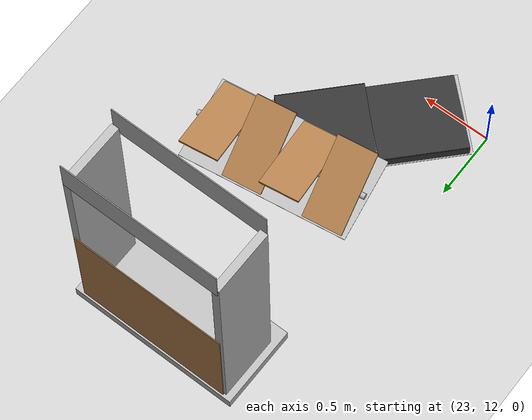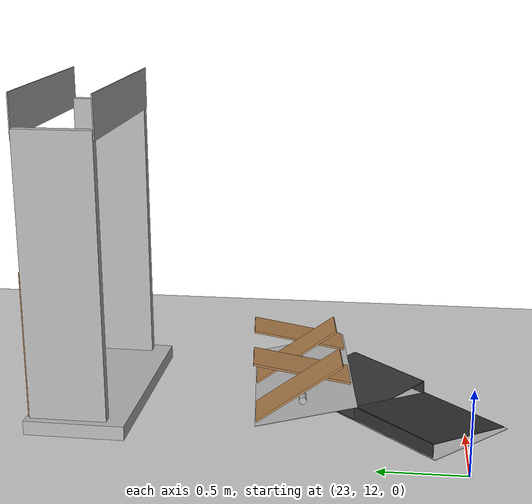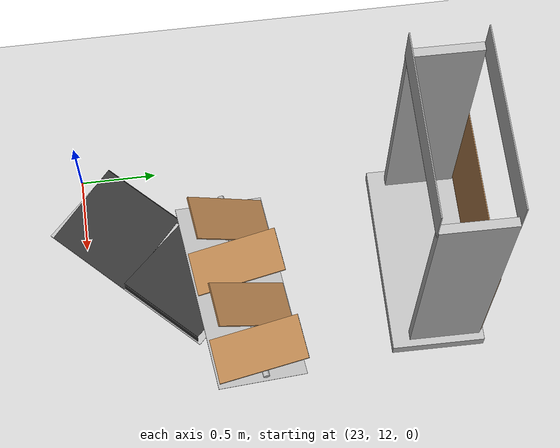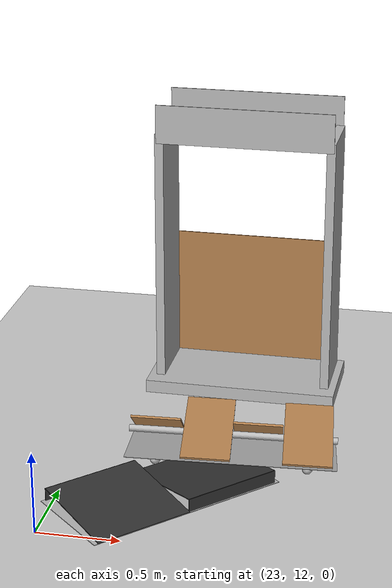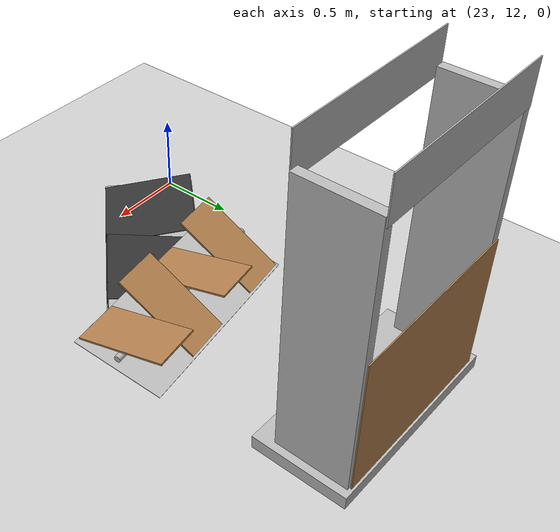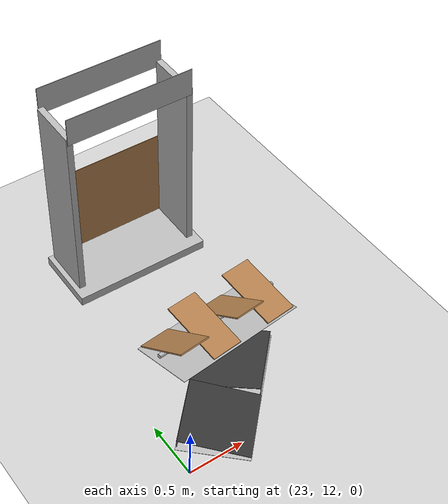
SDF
<sdf version="1.4">
 <world name="default">
  <model name="ground_plane">
   <static>1</static>
   <link name="link">
    <collision name="collision">
     <geometry><plane><normal>0 0 1</normal><size>100 100</size></plane></geometry>
     <surface><friction><ode><mu>100</mu><mu2>50</mu2></ode></friction></surface>
    </collision>
    <visual name="visual">
     <cast_shadows>0</cast_shadows>
     <geometry><plane><normal>0 0 1</normal><size>100 100</size></plane></geometry>
     <material>
      <script><uri>file://media/materials/scripts/gazebo.material</uri><name>Gazebo/Grey</name></script>
     </material>
    </visual>
    <velocity_decay><linear>0</linear><angular>0</angular></velocity_decay>
   </link>
  </model>
  <model name="frc2016_chevaldefrise">
   <link name="base">
    <inertial>
     <mass>10</mass>
     <pose>0 0 0.15672 0 -0 0</pose>
     <inertia><ixx>0.380221</ixx><ixy>0</ixy><ixz>0</ixz><iyy>1.43365</iyy><iyz>0</iyz><izz>1.64745</izz></inertia>
    </inertial>
    <visual name="platform">
     <pose>0 0 0.06968 0 -0 0</pose>
     <geometry><box><size>1.27 0.5969 0.003175</size></box></geometry>
    </visual>
    <collision name="platform">
     <pose>0 0 0.06968 0 -0 0</pose>
     <geometry><box><size>1.27 0.5969 0.003175</size></box></geometry>
    </collision>
    <visual name="bar">
     <pose>0 0 0.16855 0 1.5707 0</pose>
     <geometry><cylinder><radius>0.02108</radius><length>1.273</length></cylinder></geometry>
    </visual>
    <collision name="bar">
     <pose>0 0 0.16855 0 1.5707 0</pose>
     <geometry><cylinder><radius>0.02108</radius><length>1.27</length></cylinder></geometry>
    </collision>
    <visual name="castor1">
     <pose>-0.45653 -0.16581 0.03175 0 -0 0</pose>
     <geometry><sphere><radius>0.03175</radius></sphere></geometry>
    </visual>
    <collision name="castor1">
     <pose>-0.45653 -0.16581 0.03175 0 -0 0</pose>
     <geometry><sphere><radius>0.03175</radius></sphere></geometry>
    </collision>
    <visual name="castor2">
     <pose>-0.27855 0.21408 0.03175 0 -0 0</pose>
     <geometry><sphere><radius>0.03175</radius></sphere></geometry>
    </visual>
    <collision name="castor2">
     <pose>-0.27855 0.21408 0.03175 0 -0 0</pose>
     <geometry><sphere><radius>0.03175</radius></sphere></geometry>
    </collision>
    <visual name="castor3">
     <pose>0.28191 0.21419 0.03175 0 -0 0</pose>
     <geometry><sphere><radius>0.03175</radius></sphere></geometry>
    </visual>
    <collision name="castor3">
     <pose>0.28191 0.21419 0.03175 0 -0 0</pose>
     <geometry><sphere><radius>0.03175</radius></sphere></geometry>
    </collision>
    <visual name="castor4">
     <pose>0.45965 -0.16602 0.03175 0 -0 0</pose>
     <geometry><sphere><radius>0.03175</radius></sphere></geometry>
    </visual>
    <collision name="castor4">
     <pose>0.45965 -0.16602 0.03175 0 -0 0</pose>
     <geometry><sphere><radius>0.03175</radius></sphere></geometry>
    </collision>
    <velocity_decay><linear>0</linear><angular>0</angular></velocity_decay>
   </link>
   <link name="slant1">
    <pose>-0.4572 0.01307 0.1997 -0.39732 0 0</pose>
    <inertial>
     <pose>0 0.1 0 0 -0 0</pose>
     <mass>2</mass>
     <inertia>
      <ixx>0.0606857</ixx>
      <ixy>0</ixy>
      <ixz>0</ixz>
      <iyy>0.0148723</iyy>
      <iyz>0</iyz>
      <izz>0.0755042</izz>
     </inertia>
    </inertial>
    <visual name="visual">
     <geometry><box><size>0.29845 0.593285 0.0127</size></box></geometry>
     <material><script><name>Gazebo/WoodFloor</name><uri>__default__</uri></script></material>
    </visual>
    <collision name="collision"><geometry><box><size>0.29845 0.593285 0.0127</size></box></geometry></collision>
    <velocity_decay><linear>0</linear><angular>0</angular></velocity_decay>
   </link>
   <link name="slant2">
    <pose>-0.1524 -0.01307 0.1997 0.39732 -0 0</pose>
    <inertial>
     <mass>2</mass>
     <pose>0 -0.1 0 0 -0 0</pose>
     <inertia>
      <ixx>0.0606857</ixx>
      <ixy>0</ixy>
      <ixz>0</ixz>
      <iyy>0.0148723</iyy>
      <iyz>0</iyz>
      <izz>0.0755042</izz>
     </inertia>
    </inertial>
    <visual name="visual">
     <geometry><box><size>0.29845 0.593285 0.0127</size></box></geometry>
     <material><script><name>Gazebo/WoodFloor</name><uri>__default__</uri></script></material>
    </visual>
    <collision name="collision"><geometry><box><size>0.29845 0.593285 0.0127</size></box></geometry></collision>
    <velocity_decay><linear>0</linear><angular>0</angular></velocity_decay>
   </link>
   <link name="slant3">
    <pose>0.1524 0.01307 0.1997 -0.39732 0 0</pose>
    <inertial>
     <pose>0 0.1 0 0 -0 0</pose>
     <mass>2</mass>
     <inertia>
      <ixx>0.0606857</ixx>
      <ixy>0</ixy>
      <ixz>0</ixz>
      <iyy>0.0148723</iyy>
      <iyz>0</iyz>
      <izz>0.0755042</izz>
     </inertia>
    </inertial>
    <visual name="visual">
     <geometry><box><size>0.29845 0.593285 0.0127</size></box></geometry>
     <material><script><name>Gazebo/WoodFloor</name><uri>__default__</uri></script></material>
    </visual>
    <collision name="collision"><geometry><box><size>0.29845 0.593285 0.0127</size></box></geometry></collision>
    <velocity_decay><linear>0</linear><angular>0</angular></velocity_decay>
   </link>
   <link name="slant4">
    <pose>0.4572 -0.01307 0.1997 0.39732 -0 0</pose>
    <inertial>
     <pose>0 -0.1 0 0 -0 0</pose>
     <mass>2</mass>
     <inertia>
      <ixx>0.0606857</ixx>
      <ixy>0</ixy>
      <ixz>0</ixz>
      <iyy>0.0148723</iyy>
      <iyz>0</iyz>
      <izz>0.0755042</izz>
     </inertia>
    </inertial>
    <visual name="visual">
     <geometry><box><size>0.29845 0.593285 0.0127</size></box></geometry>
     <material><script><name>Gazebo/WoodFloor</name><uri>__default__</uri></script></material>
    </visual>
    <collision name="collision"><geometry><box><size>0.29845 0.593285 0.0127</size></box></geometry></collision>
    <velocity_decay><linear>0</linear><angular>0</angular></velocity_decay>
   </link>
   <joint name="slant1_joint" type="revolute">
    <parent>base</parent>
    <child>slant1</child>
    <axis><xyz>1 0 0</xyz><limit><lower>0</lower><upper>1.5707</upper></limit></axis>
   </joint>
   <joint name="slant2_joint" type="revolute">
    <parent>base</parent>
    <child>slant2</child>
    <axis><xyz>1 0 0</xyz><limit><lower>-1.5707</lower><upper>0</upper></limit></axis>
   </joint>
   <joint name="slant3_joint" type="revolute">
    <parent>base</parent>
    <child>slant3</child>
    <axis><xyz>1 0 0</xyz><limit><lower>0</lower><upper>1.5707</upper></limit></axis>
   </joint>
   <joint name="slant4_joint" type="revolute">
    <parent>base</parent>
    <child>slant4</child>
    <axis><xyz>1 0 0</xyz><limit><lower>-1.5707</lower><upper>0</upper></limit></axis>
   </joint>
   <pose>23.9618 12.9689 0.05212 -0.194137 0.036221 0.120949</pose>
   <static>0</static>
  </model>
  <model name="frc2016_drawbridge">
   <link name="base">
    <inertial>
     <mass>10</mass>
     <pose>0 0 1 0 -0 0</pose>
     <inertia><ixx>3.64907</ixx><ixy>0</ixy><ixz>0</ixz><iyy>4.67075</iyy><iyz>0</iyz><izz>1.66649</izz></inertia>
    </inertial>
    <visual name="platform">
     <pose>0 0 0.0425 0 -0 0</pose>
     <geometry><box><size>1.27 0.5969 0.085</size></box></geometry>
    </visual>
    <collision name="platform">
     <pose>0 0 0.0425 0 -0 0</pose>
     <geometry><box><size>1.27 0.5969 0.085</size></box></geometry>
    </collision>
    <visual name="right_wall">
     <pose>0.55879 0.04444 0.889 0 -0 0</pose>
     <geometry><box><size>0.05715 0.45698 1.77165</size></box></geometry>
    </visual>
    <collision name="right_wall">
     <pose>0.55879 0.04444 0.889 0 -0 0</pose>
     <geometry><box><size>0.05715 0.45698 1.77165</size></box></geometry>
    </collision>
    <visual name="left_wall">
     <pose>-0.55879 0.04444 0.889 0 -0 0</pose>
     <geometry><box><size>0.05715 0.45698 1.77165</size></box></geometry>
    </visual>
    <collision name="left_wall">
     <pose>-0.55879 0.04444 0.889 0 -0 0</pose>
     <geometry><box><size>0.05715 0.45698 1.77165</size></box></geometry>
    </collision>
    <visual name="front_upper_wall">
     <pose>0 0.27611 1.84286 0 -0 0</pose>
     <geometry><box><size>1.1557 0.006347 0.254</size></box></geometry>
    </visual>
    <collision name="front_upper_wall">
     <pose>0 0.27611 1.84286 0 -0 0</pose>
     <geometry><box><size>1.1557 0.006347 0.254</size></box></geometry>
    </collision>
    <visual name="back_upper_wall">
     <pose>0 -0.18722 1.84286 0 -0 0</pose>
     <geometry><box><size>1.1557 0.006347 0.254</size></box></geometry>
    </visual>
    <collision name="back_upper_wall">
     <pose>0 -0.18722 1.84286 0 -0 0</pose>
     <geometry><box><size>1.1557 0.006347 0.254</size></box></geometry>
    </collision>
    <velocity_decay><linear>0</linear><angular>0</angular></velocity_decay>
   </link>
   <link name="bridge">
    <pose>0 0.28245 0.50577 0 -0 0</pose>
    <inertial>
     <mass>2</mass>
     <pose>0 -0.28245 -0.50577 0 -0 0</pose>
     <inertia>
      <ixx>0.139361</ixx>
      <ixy>0</ixy>
      <ixz>0</ixz>
      <iyy>0.357088</iyy>
      <iyz>0</iyz>
      <izz>0.217741</izz>
     </inertia>
    </inertial>
    <visual name="visual">
     <geometry><box><size>1.14298 0.006347 0.9144</size></box></geometry>
     <material><script><name>Gazebo/WoodFloor</name><uri>__default__</uri></script></material>
    </visual>
    <collision name="collision"><geometry><box><size>1.14298 0.006347 0.9144</size></box></geometry></collision>
    <velocity_decay><linear>0</linear><angular>0</angular></velocity_decay>
   </link>
   <joint name="bridge_joint" type="revolute">
    <pose>0 0 -0.4172 0 -0 0</pose>
    <parent>base</parent>
    <child>bridge</child>
    <axis><xyz>1 0 0</xyz><limit><lower>-2</lower><upper>0</upper></limit></axis>
   </joint>
   <pose>23.838 14.2274 -3e-06 -2e-06 4e-06 -0.012828</pose>
   <static>0</static>
  </model>
  <model name="frc2016_ramparts">
   <static>1</static>
   <link name="link">
    <visual name="platform">
     <pose>0 0 0.06967 0 -0 0</pose>
     <geometry><box><size>1.27 0.5969 0.003175</size></box></geometry>
    </visual>
    <collision name="platform">
     <pose>0 0 0.06967 0 -0 0</pose>
     <geometry><box><size>1.27 0.5969 0.003175</size></box></geometry>
    </collision>
    <visual name="ramp1">
     <pose>0.30472 0.00588 0.1109 -0.13 0 0</pose>
     <geometry><box><size>0.60957 0.588891 0.00462</size></box></geometry>
     <material><ambient>0.2 0.2 0.2 1</ambient><diffuse>0.2 0.2 0.2 1</diffuse></material>
    </visual>
    <collision name="ramp1">
     <pose>0.30472 0.00588 0.1109 -0.13 0 0</pose>
     <geometry><box><size>0.60957 0.588891 0.00462</size></box></geometry>
    </collision>
    <visual name="up1">
     <pose>0.30472 -0.28806 0.11072 0 -0 0</pose>
     <geometry><box><size>0.60957 0.00462 0.07872</size></box></geometry>
     <material><ambient>0.2 0.2 0.2 1</ambient><diffuse>0.2 0.2 0.2 1</diffuse></material>
    </visual>
    <collision name="up1">
     <pose>0.30472 -0.28806 0.11072 0 -0 0</pose>
     <geometry><box><size>0.60957 0.00462 0.07872</size></box></geometry>
    </collision>
    <visual name="ramp2">
     <pose>-0.30472 -0.00619 0.1109 0.13 -0 0</pose>
     <geometry><box><size>0.60957 0.588891 0.00462</size></box></geometry>
     <material><ambient>0.2 0.2 0.2 1</ambient><diffuse>0.2 0.2 0.2 1</diffuse></material>
    </visual>
    <collision name="ramp2">
     <pose>-0.30472 -0.00619 0.1109 0.13 -0 0</pose>
     <geometry><box><size>0.60957 0.588891 0.00462</size></box></geometry>
    </collision>
    <visual name="up2">
     <pose>-0.30472 0.28806 0.11072 0 -0 0</pose>
     <geometry><box><size>0.60957 0.00462 0.07872</size></box></geometry>
     <material><ambient>0.2 0.2 0.2 1</ambient><diffuse>0.2 0.2 0.2 1</diffuse></material>
    </visual>
    <collision name="up2">
     <pose>-0.30472 0.28806 0.11072 0 -0 0</pose>
     <geometry><box><size>0.60957 0.00462 0.07872</size></box></geometry>
    </collision>
    <velocity_decay><linear>0</linear><angular>0</angular></velocity_decay>
   </link>
   <pose>23.6401 12.4343 0.025746 0 -0 0.799219</pose>
  </model>
 </world>
</sdf>
